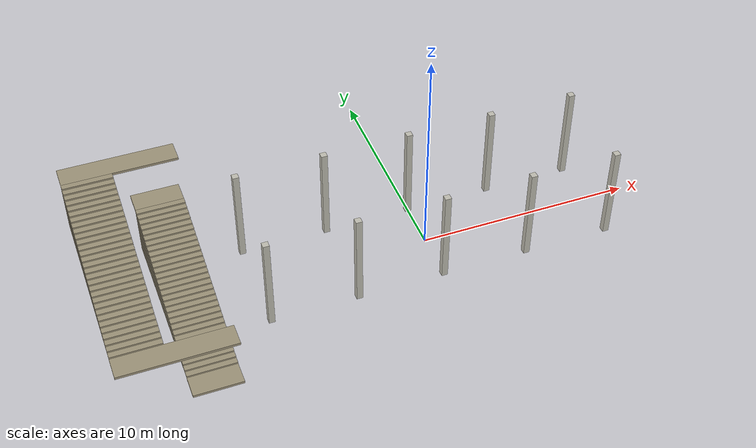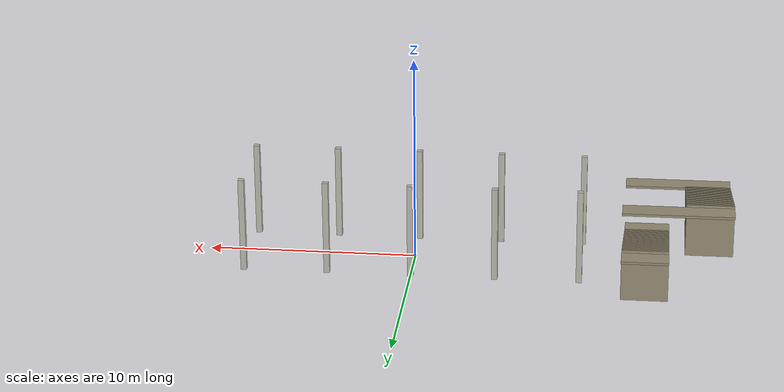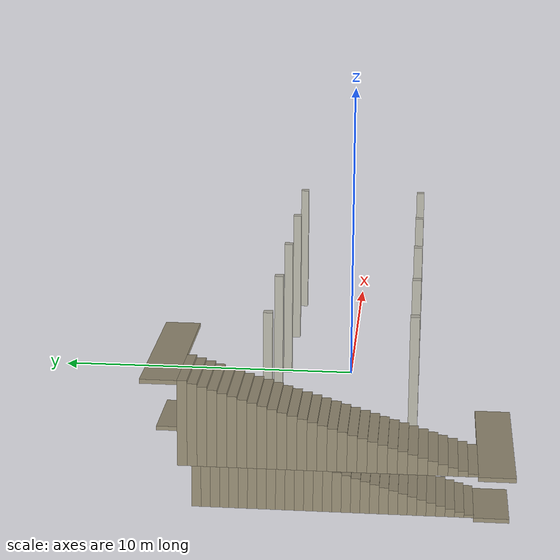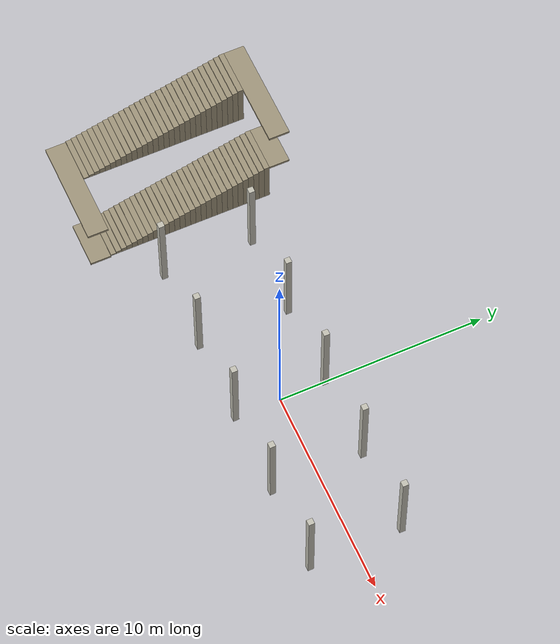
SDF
<sdf version="1.7">
 <world name="three_level_parking_garage">
  <model name="three_level_parking_structure">
   <static>true</static>
   <link name="stair_landings">
    <collision name="stair_12_lower_landing_collision">
     <pose>-11.1 -4.5 -0.06 0 0 0</pose>
     <geometry><box><size>2.2 1.0 0.12</size></box></geometry>
    </collision>
    <visual name="stair_12_lower_landing_visual">
     <pose>-11.1 -4.5 -0.06 0 0 0</pose>
     <geometry><box><size>2.2 1.0 0.12</size></box></geometry>
     <material><ambient>0.54 0.51 0.43 1</ambient><diffuse>0.62 0.58 0.48 1</diffuse></material>
    </visual>
    <collision name="stair_12_upper_landing_collision">
     <pose>-11.1 4.5 2.34 0 0 0</pose>
     <geometry><box><size>2.2 1.0 0.12</size></box></geometry>
    </collision>
    <visual name="stair_12_upper_landing_visual">
     <pose>-11.1 4.5 2.34 0 0 0</pose>
     <geometry><box><size>2.2 1.0 0.12</size></box></geometry>
     <material><ambient>0.54 0.51 0.43 1</ambient><diffuse>0.62 0.58 0.48 1</diffuse></material>
    </visual>
    <collision name="stair_23_lower_landing_collision">
     <pose>-12.55 -4.5 2.34 0 0 0</pose>
     <geometry><box><size>5.1 1.0 0.12</size></box></geometry>
    </collision>
    <visual name="stair_23_lower_landing_visual">
     <pose>-12.55 -4.5 2.34 0 0 0</pose>
     <geometry><box><size>5.1 1.0 0.12</size></box></geometry>
     <material><ambient>0.54 0.51 0.43 1</ambient><diffuse>0.62 0.58 0.48 1</diffuse></material>
    </visual>
    <collision name="stair_23_upper_landing_collision">
     <pose>-12.55 4.5 4.74 0 0 0</pose>
     <geometry><box><size>5.1 1.0 0.12</size></box></geometry>
    </collision>
    <visual name="stair_23_upper_landing_visual">
     <pose>-12.55 4.5 4.74 0 0 0</pose>
     <geometry><box><size>5.1 1.0 0.12</size></box></geometry>
     <material><ambient>0.54 0.51 0.43 1</ambient><diffuse>0.62 0.58 0.48 1</diffuse></material>
    </visual>
   </link>
   <link name="stairs">
    <collision name="stair_12_step_01_collision">
     <pose>-11.1 -3.866667 0.040 0 0 0</pose>
     <geometry><box><size>2.2 0.266668 0.080</size></box></geometry>
     <surface><friction><ode><mu>30</mu><mu2>30</mu2></ode></friction></surface>
    </collision>
    <visual name="stair_12_step_01_visual">
     <pose>-11.1 -3.866667 0.040 0 0 0</pose>
     <geometry><box><size>2.2 0.266668 0.080</size></box></geometry>
     <material><ambient>0.54 0.51 0.43 1</ambient><diffuse>0.62 0.58 0.48 1</diffuse></material>
    </visual>
    <collision name="stair_12_step_02_collision">
     <pose>-11.1 -3.600000 0.080 0 0 0</pose>
     <geometry><box><size>2.2 0.266668 0.160</size></box></geometry>
     <surface><friction><ode><mu>30</mu><mu2>30</mu2></ode></friction></surface>
    </collision>
    <visual name="stair_12_step_02_visual">
     <pose>-11.1 -3.600000 0.080 0 0 0</pose>
     <geometry><box><size>2.2 0.266668 0.160</size></box></geometry>
     <material><ambient>0.54 0.51 0.43 1</ambient><diffuse>0.62 0.58 0.48 1</diffuse></material>
    </visual>
    <collision name="stair_12_step_03_collision">
     <pose>-11.1 -3.333333 0.120 0 0 0</pose>
     <geometry><box><size>2.2 0.266668 0.240</size></box></geometry>
     <surface><friction><ode><mu>30</mu><mu2>30</mu2></ode></friction></surface>
    </collision>
    <visual name="stair_12_step_03_visual">
     <pose>-11.1 -3.333333 0.120 0 0 0</pose>
     <geometry><box><size>2.2 0.266668 0.240</size></box></geometry>
     <material><ambient>0.54 0.51 0.43 1</ambient><diffuse>0.62 0.58 0.48 1</diffuse></material>
    </visual>
    <collision name="stair_12_step_04_collision">
     <pose>-11.1 -3.066667 0.160 0 0 0</pose>
     <geometry><box><size>2.2 0.266668 0.320</size></box></geometry>
     <surface><friction><ode><mu>30</mu><mu2>30</mu2></ode></friction></surface>
    </collision>
    <visual name="stair_12_step_04_visual">
     <pose>-11.1 -3.066667 0.160 0 0 0</pose>
     <geometry><box><size>2.2 0.266668 0.320</size></box></geometry>
     <material><ambient>0.54 0.51 0.43 1</ambient><diffuse>0.62 0.58 0.48 1</diffuse></material>
    </visual>
    <collision name="stair_12_step_05_collision">
     <pose>-11.1 -2.800000 0.200 0 0 0</pose>
     <geometry><box><size>2.2 0.266668 0.400</size></box></geometry>
     <surface><friction><ode><mu>30</mu><mu2>30</mu2></ode></friction></surface>
    </collision>
    <visual name="stair_12_step_05_visual">
     <pose>-11.1 -2.800000 0.200 0 0 0</pose>
     <geometry><box><size>2.2 0.266668 0.400</size></box></geometry>
     <material><ambient>0.54 0.51 0.43 1</ambient><diffuse>0.62 0.58 0.48 1</diffuse></material>
    </visual>
    <collision name="stair_12_step_06_collision">
     <pose>-11.1 -2.533333 0.240 0 0 0</pose>
     <geometry><box><size>2.2 0.266668 0.480</size></box></geometry>
     <surface><friction><ode><mu>30</mu><mu2>30</mu2></ode></friction></surface>
    </collision>
    <visual name="stair_12_step_06_visual">
     <pose>-11.1 -2.533333 0.240 0 0 0</pose>
     <geometry><box><size>2.2 0.266668 0.480</size></box></geometry>
     <material><ambient>0.54 0.51 0.43 1</ambient><diffuse>0.62 0.58 0.48 1</diffuse></material>
    </visual>
    <collision name="stair_12_step_07_collision">
     <pose>-11.1 -2.266667 0.280 0 0 0</pose>
     <geometry><box><size>2.2 0.266668 0.560</size></box></geometry>
     <surface><friction><ode><mu>30</mu><mu2>30</mu2></ode></friction></surface>
    </collision>
    <visual name="stair_12_step_07_visual">
     <pose>-11.1 -2.266667 0.280 0 0 0</pose>
     <geometry><box><size>2.2 0.266668 0.560</size></box></geometry>
     <material><ambient>0.54 0.51 0.43 1</ambient><diffuse>0.62 0.58 0.48 1</diffuse></material>
    </visual>
    <collision name="stair_12_step_08_collision">
     <pose>-11.1 -2.000000 0.320 0 0 0</pose>
     <geometry><box><size>2.2 0.266668 0.640</size></box></geometry>
     <surface><friction><ode><mu>30</mu><mu2>30</mu2></ode></friction></surface>
    </collision>
    <visual name="stair_12_step_08_visual">
     <pose>-11.1 -2.000000 0.320 0 0 0</pose>
     <geometry><box><size>2.2 0.266668 0.640</size></box></geometry>
     <material><ambient>0.54 0.51 0.43 1</ambient><diffuse>0.62 0.58 0.48 1</diffuse></material>
    </visual>
    <collision name="stair_12_step_09_collision">
     <pose>-11.1 -1.733333 0.360 0 0 0</pose>
     <geometry><box><size>2.2 0.266668 0.720</size></box></geometry>
     <surface><friction><ode><mu>30</mu><mu2>30</mu2></ode></friction></surface>
    </collision>
    <visual name="stair_12_step_09_visual">
     <pose>-11.1 -1.733333 0.360 0 0 0</pose>
     <geometry><box><size>2.2 0.266668 0.720</size></box></geometry>
     <material><ambient>0.54 0.51 0.43 1</ambient><diffuse>0.62 0.58 0.48 1</diffuse></material>
    </visual>
    <collision name="stair_12_step_10_collision">
     <pose>-11.1 -1.466667 0.400 0 0 0</pose>
     <geometry><box><size>2.2 0.266668 0.800</size></box></geometry>
     <surface><friction><ode><mu>30</mu><mu2>30</mu2></ode></friction></surface>
    </collision>
    <visual name="stair_12_step_10_visual">
     <pose>-11.1 -1.466667 0.400 0 0 0</pose>
     <geometry><box><size>2.2 0.266668 0.800</size></box></geometry>
     <material><ambient>0.54 0.51 0.43 1</ambient><diffuse>0.62 0.58 0.48 1</diffuse></material>
    </visual>
    <collision name="stair_12_step_11_collision">
     <pose>-11.1 -1.200000 0.440 0 0 0</pose>
     <geometry><box><size>2.2 0.266668 0.880</size></box></geometry>
     <surface><friction><ode><mu>30</mu><mu2>30</mu2></ode></friction></surface>
    </collision>
    <visual name="stair_12_step_11_visual">
     <pose>-11.1 -1.200000 0.440 0 0 0</pose>
     <geometry><box><size>2.2 0.266668 0.880</size></box></geometry>
     <material><ambient>0.54 0.51 0.43 1</ambient><diffuse>0.62 0.58 0.48 1</diffuse></material>
    </visual>
    <collision name="stair_12_step_12_collision">
     <pose>-11.1 -0.933333 0.480 0 0 0</pose>
     <geometry><box><size>2.2 0.266668 0.960</size></box></geometry>
     <surface><friction><ode><mu>30</mu><mu2>30</mu2></ode></friction></surface>
    </collision>
    <visual name="stair_12_step_12_visual">
     <pose>-11.1 -0.933333 0.480 0 0 0</pose>
     <geometry><box><size>2.2 0.266668 0.960</size></box></geometry>
     <material><ambient>0.54 0.51 0.43 1</ambient><diffuse>0.62 0.58 0.48 1</diffuse></material>
    </visual>
    <collision name="stair_12_step_13_collision">
     <pose>-11.1 -0.666667 0.520 0 0 0</pose>
     <geometry><box><size>2.2 0.266668 1.040</size></box></geometry>
     <surface><friction><ode><mu>30</mu><mu2>30</mu2></ode></friction></surface>
    </collision>
    <visual name="stair_12_step_13_visual">
     <pose>-11.1 -0.666667 0.520 0 0 0</pose>
     <geometry><box><size>2.2 0.266668 1.040</size></box></geometry>
     <material><ambient>0.54 0.51 0.43 1</ambient><diffuse>0.62 0.58 0.48 1</diffuse></material>
    </visual>
    <collision name="stair_12_step_14_collision">
     <pose>-11.1 -0.400000 0.560 0 0 0</pose>
     <geometry><box><size>2.2 0.266668 1.120</size></box></geometry>
     <surface><friction><ode><mu>30</mu><mu2>30</mu2></ode></friction></surface>
    </collision>
    <visual name="stair_12_step_14_visual">
     <pose>-11.1 -0.400000 0.560 0 0 0</pose>
     <geometry><box><size>2.2 0.266668 1.120</size></box></geometry>
     <material><ambient>0.54 0.51 0.43 1</ambient><diffuse>0.62 0.58 0.48 1</diffuse></material>
    </visual>
    <collision name="stair_12_step_15_collision">
     <pose>-11.1 -0.133333 0.600 0 0 0</pose>
     <geometry><box><size>2.2 0.266668 1.200</size></box></geometry>
     <surface><friction><ode><mu>30</mu><mu2>30</mu2></ode></friction></surface>
    </collision>
    <visual name="stair_12_step_15_visual">
     <pose>-11.1 -0.133333 0.600 0 0 0</pose>
     <geometry><box><size>2.2 0.266668 1.200</size></box></geometry>
     <material><ambient>0.54 0.51 0.43 1</ambient><diffuse>0.62 0.58 0.48 1</diffuse></material>
    </visual>
    <collision name="stair_12_step_16_collision">
     <pose>-11.1 0.133333 0.640 0 0 0</pose>
     <geometry><box><size>2.2 0.266668 1.280</size></box></geometry>
     <surface><friction><ode><mu>30</mu><mu2>30</mu2></ode></friction></surface>
    </collision>
    <visual name="stair_12_step_16_visual">
     <pose>-11.1 0.133333 0.640 0 0 0</pose>
     <geometry><box><size>2.2 0.266668 1.280</size></box></geometry>
     <material><ambient>0.54 0.51 0.43 1</ambient><diffuse>0.62 0.58 0.48 1</diffuse></material>
    </visual>
    <collision name="stair_12_step_17_collision">
     <pose>-11.1 0.400000 0.680 0 0 0</pose>
     <geometry><box><size>2.2 0.266668 1.360</size></box></geometry>
     <surface><friction><ode><mu>30</mu><mu2>30</mu2></ode></friction></surface>
    </collision>
    <visual name="stair_12_step_17_visual">
     <pose>-11.1 0.400000 0.680 0 0 0</pose>
     <geometry><box><size>2.2 0.266668 1.360</size></box></geometry>
     <material><ambient>0.54 0.51 0.43 1</ambient><diffuse>0.62 0.58 0.48 1</diffuse></material>
    </visual>
    <collision name="stair_12_step_18_collision">
     <pose>-11.1 0.666667 0.720 0 0 0</pose>
     <geometry><box><size>2.2 0.266668 1.440</size></box></geometry>
     <surface><friction><ode><mu>30</mu><mu2>30</mu2></ode></friction></surface>
    </collision>
    <visual name="stair_12_step_18_visual">
     <pose>-11.1 0.666667 0.720 0 0 0</pose>
     <geometry><box><size>2.2 0.266668 1.440</size></box></geometry>
     <material><ambient>0.54 0.51 0.43 1</ambient><diffuse>0.62 0.58 0.48 1</diffuse></material>
    </visual>
    <collision name="stair_12_step_19_collision">
     <pose>-11.1 0.933333 0.760 0 0 0</pose>
     <geometry><box><size>2.2 0.266668 1.520</size></box></geometry>
     <surface><friction><ode><mu>30</mu><mu2>30</mu2></ode></friction></surface>
    </collision>
    <visual name="stair_12_step_19_visual">
     <pose>-11.1 0.933333 0.760 0 0 0</pose>
     <geometry><box><size>2.2 0.266668 1.520</size></box></geometry>
     <material><ambient>0.54 0.51 0.43 1</ambient><diffuse>0.62 0.58 0.48 1</diffuse></material>
    </visual>
    <collision name="stair_12_step_20_collision">
     <pose>-11.1 1.200000 0.800 0 0 0</pose>
     <geometry><box><size>2.2 0.266668 1.600</size></box></geometry>
     <surface><friction><ode><mu>30</mu><mu2>30</mu2></ode></friction></surface>
    </collision>
    <visual name="stair_12_step_20_visual">
     <pose>-11.1 1.200000 0.800 0 0 0</pose>
     <geometry><box><size>2.2 0.266668 1.600</size></box></geometry>
     <material><ambient>0.54 0.51 0.43 1</ambient><diffuse>0.62 0.58 0.48 1</diffuse></material>
    </visual>
    <collision name="stair_12_step_21_collision">
     <pose>-11.1 1.466667 0.840 0 0 0</pose>
     <geometry><box><size>2.2 0.266668 1.680</size></box></geometry>
     <surface><friction><ode><mu>30</mu><mu2>30</mu2></ode></friction></surface>
    </collision>
    <visual name="stair_12_step_21_visual">
     <pose>-11.1 1.466667 0.840 0 0 0</pose>
     <geometry><box><size>2.2 0.266668 1.680</size></box></geometry>
     <material><ambient>0.54 0.51 0.43 1</ambient><diffuse>0.62 0.58 0.48 1</diffuse></material>
    </visual>
    <collision name="stair_12_step_22_collision">
     <pose>-11.1 1.733333 0.880 0 0 0</pose>
     <geometry><box><size>2.2 0.266668 1.760</size></box></geometry>
     <surface><friction><ode><mu>30</mu><mu2>30</mu2></ode></friction></surface>
    </collision>
    <visual name="stair_12_step_22_visual">
     <pose>-11.1 1.733333 0.880 0 0 0</pose>
     <geometry><box><size>2.2 0.266668 1.760</size></box></geometry>
     <material><ambient>0.54 0.51 0.43 1</ambient><diffuse>0.62 0.58 0.48 1</diffuse></material>
    </visual>
    <collision name="stair_12_step_23_collision">
     <pose>-11.1 2.000000 0.920 0 0 0</pose>
     <geometry><box><size>2.2 0.266668 1.840</size></box></geometry>
     <surface><friction><ode><mu>30</mu><mu2>30</mu2></ode></friction></surface>
    </collision>
    <visual name="stair_12_step_23_visual">
     <pose>-11.1 2.000000 0.920 0 0 0</pose>
     <geometry><box><size>2.2 0.266668 1.840</size></box></geometry>
     <material><ambient>0.54 0.51 0.43 1</ambient><diffuse>0.62 0.58 0.48 1</diffuse></material>
    </visual>
    <collision name="stair_12_step_24_collision">
     <pose>-11.1 2.266667 0.960 0 0 0</pose>
     <geometry><box><size>2.2 0.266668 1.920</size></box></geometry>
     <surface><friction><ode><mu>30</mu><mu2>30</mu2></ode></friction></surface>
    </collision>
    <visual name="stair_12_step_24_visual">
     <pose>-11.1 2.266667 0.960 0 0 0</pose>
     <geometry><box><size>2.2 0.266668 1.920</size></box></geometry>
     <material><ambient>0.54 0.51 0.43 1</ambient><diffuse>0.62 0.58 0.48 1</diffuse></material>
    </visual>
    <collision name="stair_12_step_25_collision">
     <pose>-11.1 2.533333 1.000 0 0 0</pose>
     <geometry><box><size>2.2 0.266668 2.000</size></box></geometry>
     <surface><friction><ode><mu>30</mu><mu2>30</mu2></ode></friction></surface>
    </collision>
    <visual name="stair_12_step_25_visual">
     <pose>-11.1 2.533333 1.000 0 0 0</pose>
     <geometry><box><size>2.2 0.266668 2.000</size></box></geometry>
     <material><ambient>0.54 0.51 0.43 1</ambient><diffuse>0.62 0.58 0.48 1</diffuse></material>
    </visual>
    <collision name="stair_12_step_26_collision">
     <pose>-11.1 2.800000 1.040 0 0 0</pose>
     <geometry><box><size>2.2 0.266668 2.080</size></box></geometry>
     <surface><friction><ode><mu>30</mu><mu2>30</mu2></ode></friction></surface>
    </collision>
    <visual name="stair_12_step_26_visual">
     <pose>-11.1 2.800000 1.040 0 0 0</pose>
     <geometry><box><size>2.2 0.266668 2.080</size></box></geometry>
     <material><ambient>0.54 0.51 0.43 1</ambient><diffuse>0.62 0.58 0.48 1</diffuse></material>
    </visual>
    <collision name="stair_12_step_27_collision">
     <pose>-11.1 3.066667 1.080 0 0 0</pose>
     <geometry><box><size>2.2 0.266668 2.160</size></box></geometry>
     <surface><friction><ode><mu>30</mu><mu2>30</mu2></ode></friction></surface>
    </collision>
    <visual name="stair_12_step_27_visual">
     <pose>-11.1 3.066667 1.080 0 0 0</pose>
     <geometry><box><size>2.2 0.266668 2.160</size></box></geometry>
     <material><ambient>0.54 0.51 0.43 1</ambient><diffuse>0.62 0.58 0.48 1</diffuse></material>
    </visual>
    <collision name="stair_12_step_28_collision">
     <pose>-11.1 3.333333 1.120 0 0 0</pose>
     <geometry><box><size>2.2 0.266668 2.240</size></box></geometry>
     <surface><friction><ode><mu>30</mu><mu2>30</mu2></ode></friction></surface>
    </collision>
    <visual name="stair_12_step_28_visual">
     <pose>-11.1 3.333333 1.120 0 0 0</pose>
     <geometry><box><size>2.2 0.266668 2.240</size></box></geometry>
     <material><ambient>0.54 0.51 0.43 1</ambient><diffuse>0.62 0.58 0.48 1</diffuse></material>
    </visual>
    <collision name="stair_12_step_29_collision">
     <pose>-11.1 3.600000 1.160 0 0 0</pose>
     <geometry><box><size>2.2 0.266668 2.320</size></box></geometry>
     <surface><friction><ode><mu>30</mu><mu2>30</mu2></ode></friction></surface>
    </collision>
    <visual name="stair_12_step_29_visual">
     <pose>-11.1 3.600000 1.160 0 0 0</pose>
     <geometry><box><size>2.2 0.266668 2.320</size></box></geometry>
     <material><ambient>0.54 0.51 0.43 1</ambient><diffuse>0.62 0.58 0.48 1</diffuse></material>
    </visual>
    <collision name="stair_12_step_30_collision">
     <pose>-11.1 3.866667 1.200 0 0 0</pose>
     <geometry><box><size>2.2 0.266668 2.400</size></box></geometry>
     <surface><friction><ode><mu>30</mu><mu2>30</mu2></ode></friction></surface>
    </collision>
    <visual name="stair_12_step_30_visual">
     <pose>-11.1 3.866667 1.200 0 0 0</pose>
     <geometry><box><size>2.2 0.266668 2.400</size></box></geometry>
     <material><ambient>0.54 0.51 0.43 1</ambient><diffuse>0.62 0.58 0.48 1</diffuse></material>
    </visual>
    <collision name="stair_23_step_01_collision">
     <pose>-14.0 -3.866667 2.440 0 0 0</pose>
     <geometry><box><size>2.2 0.266668 0.080</size></box></geometry>
     <surface><friction><ode><mu>30</mu><mu2>30</mu2></ode></friction></surface>
    </collision>
    <visual name="stair_23_step_01_visual">
     <pose>-14.0 -3.866667 2.440 0 0 0</pose>
     <geometry><box><size>2.2 0.266668 0.080</size></box></geometry>
     <material><ambient>0.54 0.51 0.43 1</ambient><diffuse>0.62 0.58 0.48 1</diffuse></material>
    </visual>
    <collision name="stair_23_step_02_collision">
     <pose>-14.0 -3.600000 2.480 0 0 0</pose>
     <geometry><box><size>2.2 0.266668 0.160</size></box></geometry>
     <surface><friction><ode><mu>30</mu><mu2>30</mu2></ode></friction></surface>
    </collision>
    <visual name="stair_23_step_02_visual">
     <pose>-14.0 -3.600000 2.480 0 0 0</pose>
     <geometry><box><size>2.2 0.266668 0.160</size></box></geometry>
     <material><ambient>0.54 0.51 0.43 1</ambient><diffuse>0.62 0.58 0.48 1</diffuse></material>
    </visual>
    <collision name="stair_23_step_03_collision">
     <pose>-14.0 -3.333333 2.520 0 0 0</pose>
     <geometry><box><size>2.2 0.266668 0.240</size></box></geometry>
     <surface><friction><ode><mu>30</mu><mu2>30</mu2></ode></friction></surface>
    </collision>
    <visual name="stair_23_step_03_visual">
     <pose>-14.0 -3.333333 2.520 0 0 0</pose>
     <geometry><box><size>2.2 0.266668 0.240</size></box></geometry>
     <material><ambient>0.54 0.51 0.43 1</ambient><diffuse>0.62 0.58 0.48 1</diffuse></material>
    </visual>
    <collision name="stair_23_step_04_collision">
     <pose>-14.0 -3.066667 2.560 0 0 0</pose>
     <geometry><box><size>2.2 0.266668 0.320</size></box></geometry>
     <surface><friction><ode><mu>30</mu><mu2>30</mu2></ode></friction></surface>
    </collision>
    <visual name="stair_23_step_04_visual">
     <pose>-14.0 -3.066667 2.560 0 0 0</pose>
     <geometry><box><size>2.2 0.266668 0.320</size></box></geometry>
     <material><ambient>0.54 0.51 0.43 1</ambient><diffuse>0.62 0.58 0.48 1</diffuse></material>
    </visual>
    <collision name="stair_23_step_05_collision">
     <pose>-14.0 -2.800000 2.600 0 0 0</pose>
     <geometry><box><size>2.2 0.266668 0.400</size></box></geometry>
     <surface><friction><ode><mu>30</mu><mu2>30</mu2></ode></friction></surface>
    </collision>
    <visual name="stair_23_step_05_visual">
     <pose>-14.0 -2.800000 2.600 0 0 0</pose>
     <geometry><box><size>2.2 0.266668 0.400</size></box></geometry>
     <material><ambient>0.54 0.51 0.43 1</ambient><diffuse>0.62 0.58 0.48 1</diffuse></material>
    </visual>
    <collision name="stair_23_step_06_collision">
     <pose>-14.0 -2.533333 2.640 0 0 0</pose>
     <geometry><box><size>2.2 0.266668 0.480</size></box></geometry>
     <surface><friction><ode><mu>30</mu><mu2>30</mu2></ode></friction></surface>
    </collision>
    <visual name="stair_23_step_06_visual">
     <pose>-14.0 -2.533333 2.640 0 0 0</pose>
     <geometry><box><size>2.2 0.266668 0.480</size></box></geometry>
     <material><ambient>0.54 0.51 0.43 1</ambient><diffuse>0.62 0.58 0.48 1</diffuse></material>
    </visual>
    <collision name="stair_23_step_07_collision">
     <pose>-14.0 -2.266667 2.680 0 0 0</pose>
     <geometry><box><size>2.2 0.266668 0.560</size></box></geometry>
     <surface><friction><ode><mu>30</mu><mu2>30</mu2></ode></friction></surface>
    </collision>
    <visual name="stair_23_step_07_visual">
     <pose>-14.0 -2.266667 2.680 0 0 0</pose>
     <geometry><box><size>2.2 0.266668 0.560</size></box></geometry>
     <material><ambient>0.54 0.51 0.43 1</ambient><diffuse>0.62 0.58 0.48 1</diffuse></material>
    </visual>
    <collision name="stair_23_step_08_collision">
     <pose>-14.0 -2.000000 2.720 0 0 0</pose>
     <geometry><box><size>2.2 0.266668 0.640</size></box></geometry>
     <surface><friction><ode><mu>30</mu><mu2>30</mu2></ode></friction></surface>
    </collision>
    <visual name="stair_23_step_08_visual">
     <pose>-14.0 -2.000000 2.720 0 0 0</pose>
     <geometry><box><size>2.2 0.266668 0.640</size></box></geometry>
     <material><ambient>0.54 0.51 0.43 1</ambient><diffuse>0.62 0.58 0.48 1</diffuse></material>
    </visual>
    <collision name="stair_23_step_09_collision">
     <pose>-14.0 -1.733333 2.760 0 0 0</pose>
     <geometry><box><size>2.2 0.266668 0.720</size></box></geometry>
     <surface><friction><ode><mu>30</mu><mu2>30</mu2></ode></friction></surface>
    </collision>
    <visual name="stair_23_step_09_visual">
     <pose>-14.0 -1.733333 2.760 0 0 0</pose>
     <geometry><box><size>2.2 0.266668 0.720</size></box></geometry>
     <material><ambient>0.54 0.51 0.43 1</ambient><diffuse>0.62 0.58 0.48 1</diffuse></material>
    </visual>
    <collision name="stair_23_step_10_collision">
     <pose>-14.0 -1.466667 2.800 0 0 0</pose>
     <geometry><box><size>2.2 0.266668 0.800</size></box></geometry>
     <surface><friction><ode><mu>30</mu><mu2>30</mu2></ode></friction></surface>
    </collision>
    <visual name="stair_23_step_10_visual">
     <pose>-14.0 -1.466667 2.800 0 0 0</pose>
     <geometry><box><size>2.2 0.266668 0.800</size></box></geometry>
     <material><ambient>0.54 0.51 0.43 1</ambient><diffuse>0.62 0.58 0.48 1</diffuse></material>
    </visual>
    <collision name="stair_23_step_11_collision">
     <pose>-14.0 -1.200000 2.840 0 0 0</pose>
     <geometry><box><size>2.2 0.266668 0.880</size></box></geometry>
     <surface><friction><ode><mu>30</mu><mu2>30</mu2></ode></friction></surface>
    </collision>
    <visual name="stair_23_step_11_visual">
     <pose>-14.0 -1.200000 2.840 0 0 0</pose>
     <geometry><box><size>2.2 0.266668 0.880</size></box></geometry>
     <material><ambient>0.54 0.51 0.43 1</ambient><diffuse>0.62 0.58 0.48 1</diffuse></material>
    </visual>
    <collision name="stair_23_step_12_collision">
     <pose>-14.0 -0.933333 2.880 0 0 0</pose>
     <geometry><box><size>2.2 0.266668 0.960</size></box></geometry>
     <surface><friction><ode><mu>30</mu><mu2>30</mu2></ode></friction></surface>
    </collision>
    <visual name="stair_23_step_12_visual">
     <pose>-14.0 -0.933333 2.880 0 0 0</pose>
     <geometry><box><size>2.2 0.266668 0.960</size></box></geometry>
     <material><ambient>0.54 0.51 0.43 1</ambient><diffuse>0.62 0.58 0.48 1</diffuse></material>
    </visual>
    <collision name="stair_23_step_13_collision">
     <pose>-14.0 -0.666667 2.920 0 0 0</pose>
     <geometry><box><size>2.2 0.266668 1.040</size></box></geometry>
     <surface><friction><ode><mu>30</mu><mu2>30</mu2></ode></friction></surface>
    </collision>
    <visual name="stair_23_step_13_visual">
     <pose>-14.0 -0.666667 2.920 0 0 0</pose>
     <geometry><box><size>2.2 0.266668 1.040</size></box></geometry>
     <material><ambient>0.54 0.51 0.43 1</ambient><diffuse>0.62 0.58 0.48 1</diffuse></material>
    </visual>
    <collision name="stair_23_step_14_collision">
     <pose>-14.0 -0.400000 2.960 0 0 0</pose>
     <geometry><box><size>2.2 0.266668 1.120</size></box></geometry>
     <surface><friction><ode><mu>30</mu><mu2>30</mu2></ode></friction></surface>
    </collision>
    <visual name="stair_23_step_14_visual">
     <pose>-14.0 -0.400000 2.960 0 0 0</pose>
     <geometry><box><size>2.2 0.266668 1.120</size></box></geometry>
     <material><ambient>0.54 0.51 0.43 1</ambient><diffuse>0.62 0.58 0.48 1</diffuse></material>
    </visual>
    <collision name="stair_23_step_15_collision">
     <pose>-14.0 -0.133333 3.000 0 0 0</pose>
     <geometry><box><size>2.2 0.266668 1.200</size></box></geometry>
     <surface><friction><ode><mu>30</mu><mu2>30</mu2></ode></friction></surface>
    </collision>
    <visual name="stair_23_step_15_visual">
     <pose>-14.0 -0.133333 3.000 0 0 0</pose>
     <geometry><box><size>2.2 0.266668 1.200</size></box></geometry>
     <material><ambient>0.54 0.51 0.43 1</ambient><diffuse>0.62 0.58 0.48 1</diffuse></material>
    </visual>
    <collision name="stair_23_step_16_collision">
     <pose>-14.0 0.133333 3.040 0 0 0</pose>
     <geometry><box><size>2.2 0.266668 1.280</size></box></geometry>
     <surface><friction><ode><mu>30</mu><mu2>30</mu2></ode></friction></surface>
    </collision>
    <visual name="stair_23_step_16_visual">
     <pose>-14.0 0.133333 3.040 0 0 0</pose>
     <geometry><box><size>2.2 0.266668 1.280</size></box></geometry>
     <material><ambient>0.54 0.51 0.43 1</ambient><diffuse>0.62 0.58 0.48 1</diffuse></material>
    </visual>
    <collision name="stair_23_step_17_collision">
     <pose>-14.0 0.400000 3.080 0 0 0</pose>
     <geometry><box><size>2.2 0.266668 1.360</size></box></geometry>
     <surface><friction><ode><mu>30</mu><mu2>30</mu2></ode></friction></surface>
    </collision>
    <visual name="stair_23_step_17_visual">
     <pose>-14.0 0.400000 3.080 0 0 0</pose>
     <geometry><box><size>2.2 0.266668 1.360</size></box></geometry>
     <material><ambient>0.54 0.51 0.43 1</ambient><diffuse>0.62 0.58 0.48 1</diffuse></material>
    </visual>
    <collision name="stair_23_step_18_collision">
     <pose>-14.0 0.666667 3.120 0 0 0</pose>
     <geometry><box><size>2.2 0.266668 1.440</size></box></geometry>
     <surface><friction><ode><mu>30</mu><mu2>30</mu2></ode></friction></surface>
    </collision>
    <visual name="stair_23_step_18_visual">
     <pose>-14.0 0.666667 3.120 0 0 0</pose>
     <geometry><box><size>2.2 0.266668 1.440</size></box></geometry>
     <material><ambient>0.54 0.51 0.43 1</ambient><diffuse>0.62 0.58 0.48 1</diffuse></material>
    </visual>
    <collision name="stair_23_step_19_collision">
     <pose>-14.0 0.933333 3.160 0 0 0</pose>
     <geometry><box><size>2.2 0.266668 1.520</size></box></geometry>
     <surface><friction><ode><mu>30</mu><mu2>30</mu2></ode></friction></surface>
    </collision>
    <visual name="stair_23_step_19_visual">
     <pose>-14.0 0.933333 3.160 0 0 0</pose>
     <geometry><box><size>2.2 0.266668 1.520</size></box></geometry>
     <material><ambient>0.54 0.51 0.43 1</ambient><diffuse>0.62 0.58 0.48 1</diffuse></material>
    </visual>
    <collision name="stair_23_step_20_collision">
     <pose>-14.0 1.200000 3.200 0 0 0</pose>
     <geometry><box><size>2.2 0.266668 1.600</size></box></geometry>
     <surface><friction><ode><mu>30</mu><mu2>30</mu2></ode></friction></surface>
    </collision>
    <visual name="stair_23_step_20_visual">
     <pose>-14.0 1.200000 3.200 0 0 0</pose>
     <geometry><box><size>2.2 0.266668 1.600</size></box></geometry>
     <material><ambient>0.54 0.51 0.43 1</ambient><diffuse>0.62 0.58 0.48 1</diffuse></material>
    </visual>
    <collision name="stair_23_step_21_collision">
     <pose>-14.0 1.466667 3.240 0 0 0</pose>
     <geometry><box><size>2.2 0.266668 1.680</size></box></geometry>
     <surface><friction><ode><mu>30</mu><mu2>30</mu2></ode></friction></surface>
    </collision>
    <visual name="stair_23_step_21_visual">
     <pose>-14.0 1.466667 3.240 0 0 0</pose>
     <geometry><box><size>2.2 0.266668 1.680</size></box></geometry>
     <material><ambient>0.54 0.51 0.43 1</ambient><diffuse>0.62 0.58 0.48 1</diffuse></material>
    </visual>
    <collision name="stair_23_step_22_collision">
     <pose>-14.0 1.733333 3.280 0 0 0</pose>
     <geometry><box><size>2.2 0.266668 1.760</size></box></geometry>
     <surface><friction><ode><mu>30</mu><mu2>30</mu2></ode></friction></surface>
    </collision>
    <visual name="stair_23_step_22_visual">
     <pose>-14.0 1.733333 3.280 0 0 0</pose>
     <geometry><box><size>2.2 0.266668 1.760</size></box></geometry>
     <material><ambient>0.54 0.51 0.43 1</ambient><diffuse>0.62 0.58 0.48 1</diffuse></material>
    </visual>
    <collision name="stair_23_step_23_collision">
     <pose>-14.0 2.000000 3.320 0 0 0</pose>
     <geometry><box><size>2.2 0.266668 1.840</size></box></geometry>
     <surface><friction><ode><mu>30</mu><mu2>30</mu2></ode></friction></surface>
    </collision>
    <visual name="stair_23_step_23_visual">
     <pose>-14.0 2.000000 3.320 0 0 0</pose>
     <geometry><box><size>2.2 0.266668 1.840</size></box></geometry>
     <material><ambient>0.54 0.51 0.43 1</ambient><diffuse>0.62 0.58 0.48 1</diffuse></material>
    </visual>
    <collision name="stair_23_step_24_collision">
     <pose>-14.0 2.266667 3.360 0 0 0</pose>
     <geometry><box><size>2.2 0.266668 1.920</size></box></geometry>
     <surface><friction><ode><mu>30</mu><mu2>30</mu2></ode></friction></surface>
    </collision>
    <visual name="stair_23_step_24_visual">
     <pose>-14.0 2.266667 3.360 0 0 0</pose>
     <geometry><box><size>2.2 0.266668 1.920</size></box></geometry>
     <material><ambient>0.54 0.51 0.43 1</ambient><diffuse>0.62 0.58 0.48 1</diffuse></material>
    </visual>
    <collision name="stair_23_step_25_collision">
     <pose>-14.0 2.533333 3.400 0 0 0</pose>
     <geometry><box><size>2.2 0.266668 2.000</size></box></geometry>
     <surface><friction><ode><mu>30</mu><mu2>30</mu2></ode></friction></surface>
    </collision>
    <visual name="stair_23_step_25_visual">
     <pose>-14.0 2.533333 3.400 0 0 0</pose>
     <geometry><box><size>2.2 0.266668 2.000</size></box></geometry>
     <material><ambient>0.54 0.51 0.43 1</ambient><diffuse>0.62 0.58 0.48 1</diffuse></material>
    </visual>
    <collision name="stair_23_step_26_collision">
     <pose>-14.0 2.800000 3.440 0 0 0</pose>
     <geometry><box><size>2.2 0.266668 2.080</size></box></geometry>
     <surface><friction><ode><mu>30</mu><mu2>30</mu2></ode></friction></surface>
    </collision>
    <visual name="stair_23_step_26_visual">
     <pose>-14.0 2.800000 3.440 0 0 0</pose>
     <geometry><box><size>2.2 0.266668 2.080</size></box></geometry>
     <material><ambient>0.54 0.51 0.43 1</ambient><diffuse>0.62 0.58 0.48 1</diffuse></material>
    </visual>
    <collision name="stair_23_step_27_collision">
     <pose>-14.0 3.066667 3.480 0 0 0</pose>
     <geometry><box><size>2.2 0.266668 2.160</size></box></geometry>
     <surface><friction><ode><mu>30</mu><mu2>30</mu2></ode></friction></surface>
    </collision>
    <visual name="stair_23_step_27_visual">
     <pose>-14.0 3.066667 3.480 0 0 0</pose>
     <geometry><box><size>2.2 0.266668 2.160</size></box></geometry>
     <material><ambient>0.54 0.51 0.43 1</ambient><diffuse>0.62 0.58 0.48 1</diffuse></material>
    </visual>
    <collision name="stair_23_step_28_collision">
     <pose>-14.0 3.333333 3.520 0 0 0</pose>
     <geometry><box><size>2.2 0.266668 2.240</size></box></geometry>
     <surface><friction><ode><mu>30</mu><mu2>30</mu2></ode></friction></surface>
    </collision>
    <visual name="stair_23_step_28_visual">
     <pose>-14.0 3.333333 3.520 0 0 0</pose>
     <geometry><box><size>2.2 0.266668 2.240</size></box></geometry>
     <material><ambient>0.54 0.51 0.43 1</ambient><diffuse>0.62 0.58 0.48 1</diffuse></material>
    </visual>
    <collision name="stair_23_step_29_collision">
     <pose>-14.0 3.600000 3.560 0 0 0</pose>
     <geometry><box><size>2.2 0.266668 2.320</size></box></geometry>
     <surface><friction><ode><mu>30</mu><mu2>30</mu2></ode></friction></surface>
    </collision>
    <visual name="stair_23_step_29_visual">
     <pose>-14.0 3.600000 3.560 0 0 0</pose>
     <geometry><box><size>2.2 0.266668 2.320</size></box></geometry>
     <material><ambient>0.54 0.51 0.43 1</ambient><diffuse>0.62 0.58 0.48 1</diffuse></material>
    </visual>
    <collision name="stair_23_step_30_collision">
     <pose>-14.0 3.866667 3.600 0 0 0</pose>
     <geometry><box><size>2.2 0.266668 2.400</size></box></geometry>
     <surface><friction><ode><mu>30</mu><mu2>30</mu2></ode></friction></surface>
    </collision>
    <visual name="stair_23_step_30_visual">
     <pose>-14.0 3.866667 3.600 0 0 0</pose>
     <geometry><box><size>2.2 0.266668 2.400</size></box></geometry>
     <material><ambient>0.54 0.51 0.43 1</ambient><diffuse>0.62 0.58 0.48 1</diffuse></material>
    </visual>
   </link>
   <link name="support_columns">
    <collision name="column_01_collision">
     <pose>-8 -2.2 2.30 0 0 0</pose>
     <geometry><box><size>0.28 0.28 4.60</size></box></geometry>
    </collision>
    <visual name="column_01_visual">
     <pose>-8 -2.2 2.30 0 0 0</pose>
     <geometry><box><size>0.28 0.28 4.60</size></box></geometry>
     <material><ambient>0.68 0.67 0.62 1</ambient><diffuse>0.76 0.75 0.70 1</diffuse></material>
    </visual>
    <collision name="column_02_collision">
     <pose>-4 -2.2 2.30 0 0 0</pose>
     <geometry><box><size>0.28 0.28 4.60</size></box></geometry>
    </collision>
    <visual name="column_02_visual">
     <pose>-4 -2.2 2.30 0 0 0</pose>
     <geometry><box><size>0.28 0.28 4.60</size></box></geometry>
     <material><ambient>0.68 0.67 0.62 1</ambient><diffuse>0.76 0.75 0.70 1</diffuse></material>
    </visual>
    <collision name="column_03_collision">
     <pose>0 -2.2 2.30 0 0 0</pose>
     <geometry><box><size>0.28 0.28 4.60</size></box></geometry>
    </collision>
    <visual name="column_03_visual">
     <pose>0 -2.2 2.30 0 0 0</pose>
     <geometry><box><size>0.28 0.28 4.60</size></box></geometry>
     <material><ambient>0.68 0.67 0.62 1</ambient><diffuse>0.76 0.75 0.70 1</diffuse></material>
    </visual>
    <collision name="column_04_collision">
     <pose>4 -2.2 2.30 0 0 0</pose>
     <geometry><box><size>0.28 0.28 4.60</size></box></geometry>
    </collision>
    <visual name="column_04_visual">
     <pose>4 -2.2 2.30 0 0 0</pose>
     <geometry><box><size>0.28 0.28 4.60</size></box></geometry>
     <material><ambient>0.68 0.67 0.62 1</ambient><diffuse>0.76 0.75 0.70 1</diffuse></material>
    </visual>
    <collision name="column_05_collision">
     <pose>8 -2.2 2.30 0 0 0</pose>
     <geometry><box><size>0.28 0.28 4.60</size></box></geometry>
    </collision>
    <visual name="column_05_visual">
     <pose>8 -2.2 2.30 0 0 0</pose>
     <geometry><box><size>0.28 0.28 4.60</size></box></geometry>
     <material><ambient>0.68 0.67 0.62 1</ambient><diffuse>0.76 0.75 0.70 1</diffuse></material>
    </visual>
    <collision name="column_06_collision">
     <pose>-8 2.2 2.30 0 0 0</pose>
     <geometry><box><size>0.28 0.28 4.60</size></box></geometry>
    </collision>
    <visual name="column_06_visual">
     <pose>-8 2.2 2.30 0 0 0</pose>
     <geometry><box><size>0.28 0.28 4.60</size></box></geometry>
     <material><ambient>0.68 0.67 0.62 1</ambient><diffuse>0.76 0.75 0.70 1</diffuse></material>
    </visual>
    <collision name="column_07_collision">
     <pose>-4 2.2 2.30 0 0 0</pose>
     <geometry><box><size>0.28 0.28 4.60</size></box></geometry>
    </collision>
    <visual name="column_07_visual">
     <pose>-4 2.2 2.30 0 0 0</pose>
     <geometry><box><size>0.28 0.28 4.60</size></box></geometry>
     <material><ambient>0.68 0.67 0.62 1</ambient><diffuse>0.76 0.75 0.70 1</diffuse></material>
    </visual>
    <collision name="column_08_collision">
     <pose>0 2.2 2.30 0 0 0</pose>
     <geometry><box><size>0.28 0.28 4.60</size></box></geometry>
    </collision>
    <visual name="column_08_visual">
     <pose>0 2.2 2.30 0 0 0</pose>
     <geometry><box><size>0.28 0.28 4.60</size></box></geometry>
     <material><ambient>0.68 0.67 0.62 1</ambient><diffuse>0.76 0.75 0.70 1</diffuse></material>
    </visual>
    <collision name="column_09_collision">
     <pose>4 2.2 2.30 0 0 0</pose>
     <geometry><box><size>0.28 0.28 4.60</size></box></geometry>
    </collision>
    <visual name="column_09_visual">
     <pose>4 2.2 2.30 0 0 0</pose>
     <geometry><box><size>0.28 0.28 4.60</size></box></geometry>
     <material><ambient>0.68 0.67 0.62 1</ambient><diffuse>0.76 0.75 0.70 1</diffuse></material>
    </visual>
    <collision name="column_10_collision">
     <pose>8 2.2 2.30 0 0 0</pose>
     <geometry><box><size>0.28 0.28 4.60</size></box></geometry>
    </collision>
    <visual name="column_10_visual">
     <pose>8 2.2 2.30 0 0 0</pose>
     <geometry><box><size>0.28 0.28 4.60</size></box></geometry>
     <material><ambient>0.68 0.67 0.62 1</ambient><diffuse>0.76 0.75 0.70 1</diffuse></material>
    </visual>
   </link>
  </model>
 </world>
</sdf>
